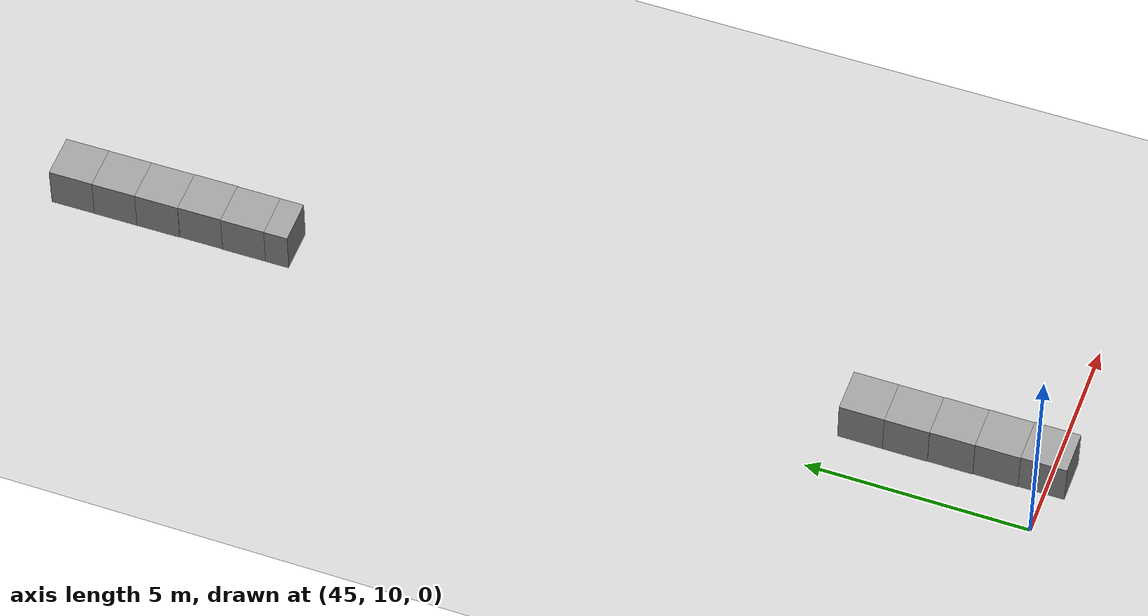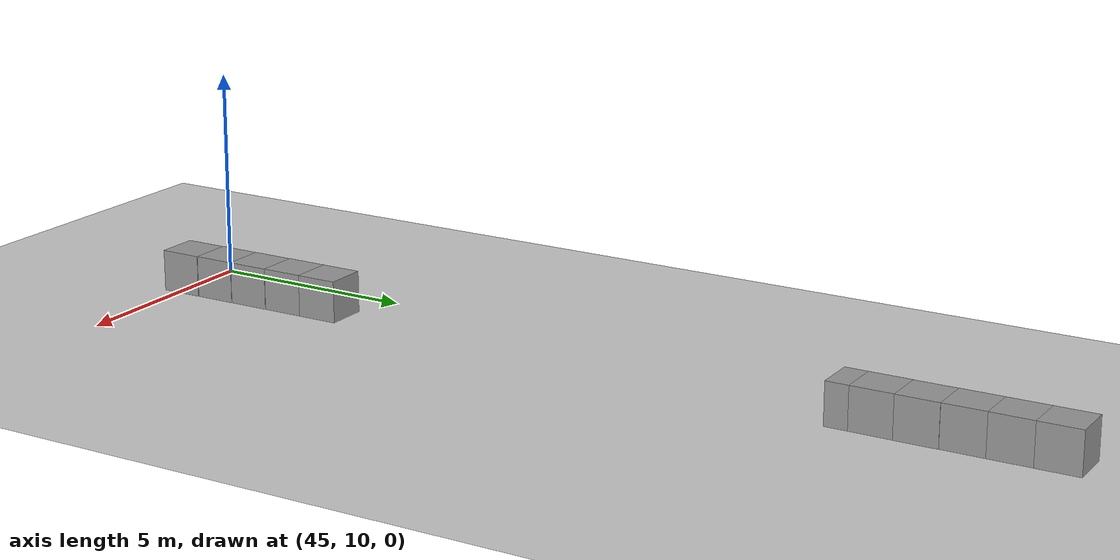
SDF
<sdf version="1.7">
 <world name="default">
  <model name="ground_plane">
   <static>1</static>
   <link name="link">
    <collision name="collision">
     <geometry><plane><normal>0 0 1</normal><size>100 100</size></plane></geometry>
     <surface>
      <contact><collide_bitmask>65535</collide_bitmask></contact>
      <friction><ode><mu>100</mu><mu2>50</mu2></ode></friction>
     </surface>
    </collision>
    <visual name="visual">
     <cast_shadows>0</cast_shadows>
     <geometry><plane><normal>0 0 1</normal><size>100 100</size></plane></geometry>
     <material>
      <script><uri>file://media/materials/scripts/gazebo.material</uri><name>Gazebo/Grey</name></script>
     </material>
    </visual>
   </link>
  </model>
  <model name="unit_box_13">
   <static>1</static>
   <pose>46.717 32.2491 0.5 0 -0 0.007909</pose>
   <link name="link">
    <inertial>
     <mass>1</mass>
     <inertia>
      <ixx>0.166667</ixx>
      <ixy>0</ixy>
      <ixz>0</ixz>
      <iyy>0.166667</iyy>
      <iyz>0</iyz>
      <izz>0.166667</izz>
     </inertia>
    </inertial>
    <collision name="collision"><geometry><box><size>1 1 1</size></box></geometry></collision>
    <visual name="visual">
     <geometry><box><size>1 1 1</size></box></geometry>
     <material>
      <script><name>Gazebo/Grey</name><uri>file://media/materials/scripts/gazebo.material</uri></script>
     </material>
    </visual>
   </link>
  </model>
  <model name="unit_box_14">
   <static>1</static>
   <pose>46.7218 31.2491 0.499995 -0 1e-05 0.007901</pose>
   <link name="link">
    <inertial>
     <mass>1</mass>
     <inertia>
      <ixx>0.166667</ixx>
      <ixy>0</ixy>
      <ixz>0</ixz>
      <iyy>0.166667</iyy>
      <iyz>0</iyz>
      <izz>0.166667</izz>
     </inertia>
    </inertial>
    <collision name="collision"><geometry><box><size>1 1 1</size></box></geometry></collision>
    <visual name="visual">
     <geometry><box><size>1 1 1</size></box></geometry>
     <material>
      <script><name>Gazebo/Grey</name><uri>file://media/materials/scripts/gazebo.material</uri></script>
     </material>
    </visual>
   </link>
  </model>
  <model name="unit_box_15">
   <static>1</static>
   <pose>46.7287 30.2491 0.5 0 -0 0.007899</pose>
   <link name="link">
    <inertial>
     <mass>1</mass>
     <inertia>
      <ixx>0.166667</ixx>
      <ixy>0</ixy>
      <ixz>0</ixz>
      <iyy>0.166667</iyy>
      <iyz>0</iyz>
      <izz>0.166667</izz>
     </inertia>
    </inertial>
    <collision name="collision"><geometry><box><size>1 1 1</size></box></geometry></collision>
    <visual name="visual">
     <geometry><box><size>1 1 1</size></box></geometry>
     <material>
      <script><name>Gazebo/Grey</name><uri>file://media/materials/scripts/gazebo.material</uri></script>
     </material>
    </visual>
   </link>
  </model>
  <model name="unit_box_16">
   <static>1</static>
   <pose>46.7446 29.2492 0.5 0 -0 0.007899</pose>
   <link name="link">
    <inertial>
     <mass>1</mass>
     <inertia>
      <ixx>0.166667</ixx>
      <ixy>0</ixy>
      <ixz>0</ixz>
      <iyy>0.166667</iyy>
      <iyz>0</iyz>
      <izz>0.166667</izz>
     </inertia>
    </inertial>
    <collision name="collision"><geometry><box><size>1 1 1</size></box></geometry></collision>
    <visual name="visual">
     <geometry><box><size>1 1 1</size></box></geometry>
     <material>
      <script><name>Gazebo/Grey</name><uri>file://media/materials/scripts/gazebo.material</uri></script>
     </material>
    </visual>
   </link>
  </model>
  <model name="unit_box_17">
   <static>1</static>
   <pose>46.7436 28.2492 0.499995 -1e-05 -0 0.007894</pose>
   <link name="link">
    <inertial>
     <mass>1</mass>
     <inertia>
      <ixx>0.166667</ixx>
      <ixy>0</ixy>
      <ixz>0</ixz>
      <iyy>0.166667</iyy>
      <iyz>0</iyz>
      <izz>0.166667</izz>
     </inertia>
    </inertial>
    <collision name="collision"><geometry><box><size>1 1 1</size></box></geometry></collision>
    <visual name="visual">
     <geometry><box><size>1 1 1</size></box></geometry>
     <material>
      <script><name>Gazebo/Grey</name><uri>file://media/materials/scripts/gazebo.material</uri></script>
     </material>
    </visual>
   </link>
  </model>
  <model name="unit_box_18">
   <static>1</static>
   <pose>46.7467 27.4779 0.499998 8e-06 -0 0.007897</pose>
   <link name="link">
    <inertial>
     <mass>1</mass>
     <inertia>
      <ixx>0.166667</ixx>
      <ixy>0</ixy>
      <ixz>0</ixz>
      <iyy>0.166667</iyy>
      <iyz>0</iyz>
      <izz>0.166667</izz>
     </inertia>
    </inertial>
    <collision name="collision"><geometry><box><size>1 0.542564 1</size></box></geometry></collision>
    <visual name="visual">
     <geometry><box><size>1 0.542564 1</size></box></geometry>
     <material>
      <script><name>Gazebo/Grey</name><uri>file://media/materials/scripts/gazebo.material</uri></script>
     </material>
    </visual>
   </link>
  </model>
  <model name="unit_box_24">
   <static>1</static>
   <pose>46.5065 10.0805 0.5 0 -0 0.00047</pose>
   <link name="link">
    <inertial>
     <mass>1</mass>
     <inertia>
      <ixx>0.166667</ixx>
      <ixy>0</ixy>
      <ixz>0</ixz>
      <iyy>0.166667</iyy>
      <iyz>0</iyz>
      <izz>0.166667</izz>
     </inertia>
    </inertial>
    <collision name="collision"><geometry><box><size>1 1.01644 1</size></box></geometry></collision>
    <visual name="visual">
     <geometry><box><size>1 1.01644 1</size></box></geometry>
     <material>
      <script><name>Gazebo/Grey</name><uri>file://media/materials/scripts/gazebo.material</uri></script>
     </material>
    </visual>
   </link>
  </model>
  <model name="unit_box_25">
   <static>1</static>
   <pose>46.4948 11.0887 0.499995 -0 1e-05 0.0005</pose>
   <link name="link">
    <inertial>
     <mass>1</mass>
     <inertia>
      <ixx>0.166667</ixx>
      <ixy>0</ixy>
      <ixz>0</ixz>
      <iyy>0.166667</iyy>
      <iyz>0</iyz>
      <izz>0.166667</izz>
     </inertia>
    </inertial>
    <collision name="collision"><geometry><box><size>1 1 1</size></box></geometry></collision>
    <visual name="visual">
     <geometry><box><size>1 1 1</size></box></geometry>
     <material>
      <script><name>Gazebo/Grey</name><uri>file://media/materials/scripts/gazebo.material</uri></script>
     </material>
    </visual>
   </link>
  </model>
  <model name="unit_box_26">
   <static>1</static>
   <pose>46.4856 12.0887 0.499995 -1e-05 -0 0.000504</pose>
   <link name="link">
    <inertial>
     <mass>1</mass>
     <inertia>
      <ixx>0.166667</ixx>
      <ixy>0</ixy>
      <ixz>0</ixz>
      <iyy>0.166667</iyy>
      <iyz>0</iyz>
      <izz>0.166667</izz>
     </inertia>
    </inertial>
    <collision name="collision"><geometry><box><size>1 1 1</size></box></geometry></collision>
    <visual name="visual">
     <geometry><box><size>1 1 1</size></box></geometry>
     <material>
      <script><name>Gazebo/Grey</name><uri>file://media/materials/scripts/gazebo.material</uri></script>
     </material>
    </visual>
   </link>
  </model>
  <model name="unit_box_27">
   <static>1</static>
   <pose>46.4766 13.0887 0.499995 1e-05 -0 0.000504</pose>
   <link name="link">
    <inertial>
     <mass>1</mass>
     <inertia>
      <ixx>0.166667</ixx>
      <ixy>0</ixy>
      <ixz>0</ixz>
      <iyy>0.166667</iyy>
      <iyz>0</iyz>
      <izz>0.166667</izz>
     </inertia>
    </inertial>
    <collision name="collision"><geometry><box><size>1 1 1</size></box></geometry></collision>
    <visual name="visual">
     <geometry><box><size>1 1 1</size></box></geometry>
     <material>
      <script><name>Gazebo/Grey</name><uri>file://media/materials/scripts/gazebo.material</uri></script>
     </material>
    </visual>
   </link>
  </model>
  <model name="unit_box_28">
   <static>1</static>
   <pose>46.4774 14.0888 0.499995 -1e-05 -0 0.000632</pose>
   <link name="link">
    <inertial>
     <mass>1</mass>
     <inertia>
      <ixx>0.166667</ixx>
      <ixy>0</ixy>
      <ixz>0</ixz>
      <iyy>0.166667</iyy>
      <iyz>0</iyz>
      <izz>0.166667</izz>
     </inertia>
    </inertial>
    <collision name="collision"><geometry><box><size>1 1 1</size></box></geometry></collision>
    <visual name="visual">
     <geometry><box><size>1 1 1</size></box></geometry>
     <material>
      <script><name>Gazebo/Grey</name><uri>file://media/materials/scripts/gazebo.material</uri></script>
     </material>
    </visual>
   </link>
  </model>
 </world>
</sdf>
